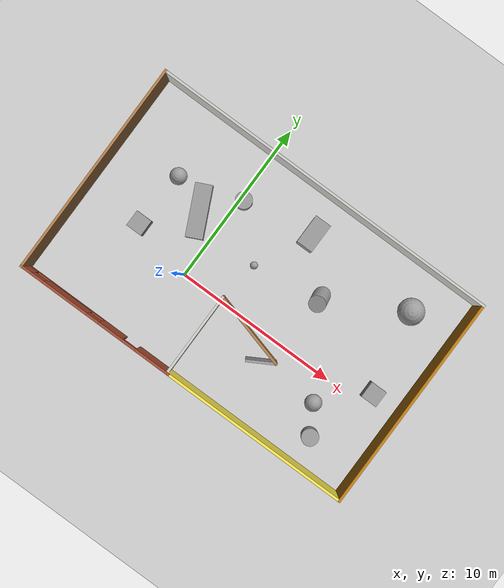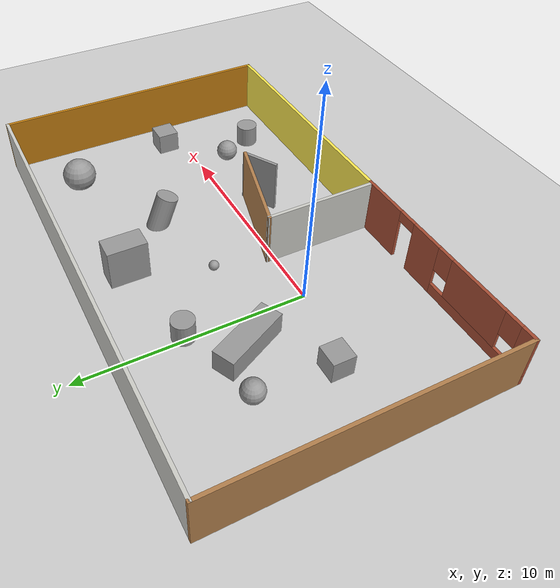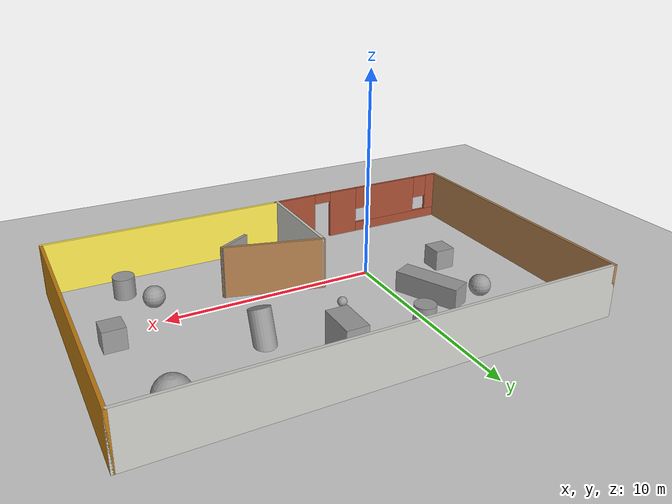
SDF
<sdf version="1.7">
 <world name="default">
  <light name="sun" type="directional">
   <pose>0 0 10 0 -0 0</pose>
   <diffuse>0.8 0.8 0.8 1</diffuse>
   <specular>0.2 0.2 0.2 1</specular>
   <attenuation>
    <range>1000</range>
    <constant>0.9</constant>
    <linear>0.01</linear>
    <quadratic>0.001</quadratic>
   </attenuation>
   <direction>-0.5 0.1 -0.9</direction>
   <spot><inner_angle>0</inner_angle><outer_angle>0</outer_angle><falloff>0</falloff></spot>
  </light>
  <model name="ground_plane">
   <static>1</static>
   <link name="link">
    <collision name="collision">
     <geometry><plane><normal>0 0 1</normal><size>100 100</size></plane></geometry>
     <surface>
      <contact><collide_bitmask>65535</collide_bitmask></contact>
      <friction><ode><mu>100</mu><mu2>50</mu2></ode></friction>
     </surface>
    </collision>
    <visual name="visual">
     <cast_shadows>0</cast_shadows>
     <geometry><plane><normal>0 0 1</normal><size>100 100</size></plane></geometry>
     <material>
      <script><uri>file://media/materials/scripts/gazebo.material</uri><name>Gazebo/Grey</name></script>
     </material>
    </visual>
   </link>
  </model>
  <gravity>0 0 -9.8</gravity>
  <magnetic_field>6e-06 2.3e-05 -4.2e-05</magnetic_field>
  <atmosphere type="adiabatic"/>
  <physics type="ode">
   <max_step_size>0.001</max_step_size>
   <real_time_factor>1</real_time_factor>
   <real_time_update_rate>1000</real_time_update_rate>
  </physics>
  <scene><ambient>0.4 0.4 0.4 1</ambient><background>0.7 0.7 0.7 1</background><shadows>1</shadows></scene>
  <spherical_coordinates>
   <surface_model>EARTH_WGS84</surface_model>
   <latitude_deg>0</latitude_deg>
   <longitude_deg>0</longitude_deg>
   <elevation>0</elevation>
   <heading_deg>0</heading_deg>
  </spherical_coordinates>
  <model name="best_world3">
   <pose>3.445 1.78 0 0 -0 0</pose>
   <link name="Wall_0">
    <pose>-5.75 -6.55 0 0 -0 3.14159</pose>
    <visual name="Wall_0_Visual_0">
     <pose>-3.85348 0 1.25 0 -0 0</pose>
     <geometry><box><size>2.29304 0.15 2.5</size></box></geometry>
     <material>
      <script><uri>file://media/materials/scripts/gazebo.material</uri><name>Gazebo/Bricks</name></script>
      <ambient>1 1 1 1</ambient>
     </material>
     <meta><layer>0</layer></meta>
    </visual>
    <collision name="Wall_0_Collision_0">
     <geometry><box><size>2.29304 0.15 2.5</size></box></geometry>
     <pose>-3.85348 0 1.25 0 -0 0</pose>
    </collision>
    <visual name="Wall_0_Visual_1">
     <pose>-1.02234 0 1.25 0 -0 0</pose>
     <geometry><box><size>1.56924 0.15 2.5</size></box></geometry>
     <material>
      <script><uri>file://media/materials/scripts/gazebo.material</uri><name>Gazebo/Bricks</name></script>
      <ambient>1 1 1 1</ambient>
     </material>
     <meta><layer>0</layer></meta>
    </visual>
    <collision name="Wall_0_Collision_1">
     <geometry><box><size>1.56924 0.15 2.5</size></box></geometry>
     <pose>-1.02234 0 1.25 0 -0 0</pose>
    </collision>
    <visual name="Wall_0_Visual_2">
     <pose>2.38114 0 0.25 0 -0 0</pose>
     <geometry><box><size>5.23772 0.15 0.5</size></box></geometry>
     <material>
      <script><uri>file://media/materials/scripts/gazebo.material</uri><name>Gazebo/Bricks</name></script>
      <ambient>1 1 1 1</ambient>
     </material>
     <meta><layer>0</layer></meta>
    </visual>
    <collision name="Wall_0_Collision_2">
     <geometry><box><size>5.23772 0.15 0.5</size></box></geometry>
     <pose>2.38114 0 0.25 0 -0 0</pose>
    </collision>
    <visual name="Wall_0_Visual_3">
     <pose>2.02324 0 1.5 0 -0 0</pose>
     <geometry><box><size>2.92191 0.15 2</size></box></geometry>
     <material>
      <script><uri>file://media/materials/scripts/gazebo.material</uri><name>Gazebo/Bricks</name></script>
      <ambient>1 1 1 1</ambient>
     </material>
     <meta><layer>0</layer></meta>
    </visual>
    <collision name="Wall_0_Collision_3">
     <geometry><box><size>2.92191 0.15 2</size></box></geometry>
     <pose>2.02324 0 1.5 0 -0 0</pose>
    </collision>
    <visual name="Wall_0_Visual_4">
     <pose>4.6421 0 1.5 0 -0 0</pose>
     <geometry><box><size>0.715807 0.15 2</size></box></geometry>
     <material>
      <script><uri>file://media/materials/scripts/gazebo.material</uri><name>Gazebo/Bricks</name></script>
      <ambient>1 1 1 1</ambient>
     </material>
     <meta><layer>0</layer></meta>
    </visual>
    <collision name="Wall_0_Collision_4">
     <geometry><box><size>0.715807 0.15 2</size></box></geometry>
     <pose>4.6421 0 1.5 0 -0 0</pose>
    </collision>
    <visual name="Wall_0_Visual_5">
     <pose>0.16228 0 1.9 0 -0 0</pose>
     <geometry><box><size>0.8 0.15 1.2</size></box></geometry>
     <material>
      <script><uri>file://media/materials/scripts/gazebo.material</uri><name>Gazebo/Bricks</name></script>
      <ambient>1 1 1 1</ambient>
     </material>
     <meta><layer>0</layer></meta>
    </visual>
    <collision name="Wall_0_Collision_5">
     <geometry><box><size>0.8 0.15 1.2</size></box></geometry>
     <pose>0.16228 0 1.9 0 -0 0</pose>
    </collision>
    <visual name="Wall_0_Visual_6">
     <pose>3.88419 0 1.9 0 -0 0</pose>
     <geometry><box><size>0.8 0.15 1.2</size></box></geometry>
     <material>
      <script><uri>file://media/materials/scripts/gazebo.material</uri><name>Gazebo/Bricks</name></script>
      <ambient>1 1 1 1</ambient>
     </material>
     <meta><layer>0</layer></meta>
    </visual>
    <collision name="Wall_0_Collision_6">
     <geometry><box><size>0.8 0.15 1.2</size></box></geometry>
     <pose>3.88419 0 1.9 0 -0 0</pose>
    </collision>
    <visual name="Wall_0_Visual_7">
     <pose>-2.25696 0 2.25 0 -0 0</pose>
     <geometry><box><size>0.9 0.15 0.5</size></box></geometry>
     <material>
      <script><uri>file://media/materials/scripts/gazebo.material</uri><name>Gazebo/Bricks</name></script>
      <ambient>1 1 1 1</ambient>
     </material>
     <meta><layer>0</layer></meta>
    </visual>
    <collision name="Wall_0_Collision_7">
     <geometry><box><size>0.9 0.15 0.5</size></box></geometry>
     <pose>-2.25696 0 2.25 0 -0 0</pose>
    </collision>
   </link>
   <link name="Wall_1">
    <collision name="Wall_1_Collision">
     <geometry><box><size>13.25 0.15 2.5</size></box></geometry>
     <pose>0 0 1.25 0 -0 0</pose>
    </collision>
    <visual name="Wall_1_Visual">
     <pose>0 0 1.25 0 -0 0</pose>
     <geometry><box><size>13.25 0.15 2.5</size></box></geometry>
     <material>
      <script><uri>file://media/materials/scripts/gazebo.material</uri><name>Gazebo/Wood</name></script>
      <ambient>1 1 1 1</ambient>
     </material>
     <meta><layer>0</layer></meta>
    </visual>
    <pose>-10.675 0 0 0 -0 1.5708</pose>
   </link>
   <link name="Wall_2">
    <collision name="Wall_2_Collision">
     <geometry><box><size>21.5 0.15 2.5</size></box></geometry>
     <pose>0 0 1.25 0 -0 0</pose>
    </collision>
    <visual name="Wall_2_Visual">
     <pose>0 0 1.25 0 -0 0</pose>
     <geometry><box><size>21.5 0.15 2.5</size></box></geometry>
     <material>
      <script><uri>file://media/materials/scripts/gazebo.material</uri><name>Gazebo/CeilingTiled</name></script>
      <ambient>0.435294 0.796078 0.67451 1</ambient>
     </material>
     <meta><layer>0</layer></meta>
    </visual>
    <pose>0 6.55 0 0 -0 0</pose>
   </link>
   <link name="Wall_3">
    <collision name="Wall_3_Collision">
     <geometry><box><size>13.25 0.15 2.5</size></box></geometry>
     <pose>0 0 1.25 0 -0 0</pose>
    </collision>
    <visual name="Wall_3_Visual">
     <pose>0 0 1.25 0 -0 0</pose>
     <geometry><box><size>13.25 0.15 2.5</size></box></geometry>
     <material>
      <script><uri>file://media/materials/scripts/gazebo.material</uri><name>Gazebo/Grey</name></script>
      <ambient>0.756863 0.490196 0.0666667 1</ambient>
     </material>
     <meta><layer>0</layer></meta>
    </visual>
    <pose>10.675 0 0 0 -0 -1.5708</pose>
   </link>
   <link name="Wall_4">
    <collision name="Wall_4_Collision">
     <geometry><box><size>11.75 0.15 2.5</size></box></geometry>
     <pose>0 0 1.25 0 -0 0</pose>
    </collision>
    <visual name="Wall_4_Visual">
     <pose>0 0 1.25 0 -0 0</pose>
     <geometry><box><size>11.75 0.15 2.5</size></box></geometry>
     <material>
      <script><uri>file://media/materials/scripts/gazebo.material</uri><name>Gazebo/Grey</name></script>
      <ambient>0.988235 0.913725 0.309804 1</ambient>
     </material>
     <meta><layer>0</layer></meta>
    </visual>
    <pose>4.875 -6.55 0 0 -0 3.14159</pose>
   </link>
   <link name="Wall_5">
    <collision name="Wall_5_Collision">
     <geometry><box><size>5.25 0.15 2.5</size></box></geometry>
     <pose>0 0 1.25 0 -0 0</pose>
    </collision>
    <visual name="Wall_5_Visual">
     <pose>0 0 1.25 0 -0 0</pose>
     <geometry><box><size>5.25 0.15 2.5</size></box></geometry>
     <material>
      <script><uri>file://media/materials/scripts/gazebo.material</uri><name>Gazebo/CeilingTiled</name></script>
      <ambient>0.921569 0.807843 0.615686 1</ambient>
     </material>
     <meta><layer>0</layer></meta>
    </visual>
    <pose>-0.925 -4 0 0 -0 1.5708</pose>
   </link>
   <link name="Wall_6">
    <collision name="Wall_6_Collision">
     <geometry><box><size>4.75 0.15 2.5</size></box></geometry>
     <pose>0 0 1.25 0 -0 0</pose>
    </collision>
    <visual name="Wall_6_Visual">
     <pose>0 0 1.25 0 -0 0</pose>
     <geometry><box><size>4.75 0.15 2.5</size></box></geometry>
     <material>
      <script><uri>file://media/materials/scripts/gazebo.material</uri><name>Gazebo/Wood</name></script>
      <ambient>1 1 1 1</ambient>
     </material>
     <meta><layer>0</layer></meta>
    </visual>
    <pose>1.29663 -2.04528 0 0 -0 -0.261799</pose>
   </link>
   <link name="Wall_7">
    <collision name="Wall_7_Collision">
     <geometry><box><size>1.75 0.15 2.5</size></box></geometry>
     <pose>0 0 1.25 0 -0 0</pose>
    </collision>
    <visual name="Wall_7_Visual">
     <pose>0 0 1.25 0 -0 0</pose>
     <geometry><box><size>1.75 0.15 2.5</size></box></geometry>
     <material>
      <script><uri>file://media/materials/scripts/gazebo.material</uri><name>Gazebo/Grey</name></script>
      <ambient>1 1 1 1</ambient>
     </material>
     <meta><layer>0</layer></meta>
    </visual>
    <pose>2.82544 -3.04057 0 0 -0 -2.61799</pose>
   </link>
   <static>1</static>
  </model>
  <model name="unit_box">
   <pose>12.4255 0.940738 0.5 0 -0 0</pose>
   <link name="link">
    <inertial>
     <mass>1</mass>
     <inertia>
      <ixx>0.166667</ixx>
      <ixy>0</ixy>
      <ixz>0</ixz>
      <iyy>0.166667</iyy>
      <iyz>0</iyz>
      <izz>0.166667</izz>
     </inertia>
    </inertial>
    <collision name="collision"><geometry><box><size>1 1 1</size></box></geometry></collision>
    <visual name="visual">
     <geometry><box><size>1 1 1</size></box></geometry>
     <material>
      <script><name>Gazebo/Grey</name><uri>file://media/materials/scripts/gazebo.material</uri></script>
     </material>
    </visual>
   </link>
  </model>
  <model name="unit_cylinder">
   <pose>10.9922 -3.07184 0.5 0 -0 0</pose>
   <link name="link">
    <inertial>
     <mass>1</mass>
     <inertia><ixx>0.145833</ixx><ixy>0</ixy><ixz>0</ixz><iyy>0.145833</iyy><iyz>0</iyz><izz>0.125</izz></inertia>
    </inertial>
    <collision name="collision">
     <geometry><cylinder><radius>0.5</radius><length>1</length></cylinder></geometry>
    </collision>
    <visual name="visual">
     <geometry><cylinder><radius>0.5</radius><length>1</length></cylinder></geometry>
     <material>
      <script><name>Gazebo/Grey</name><uri>file://media/materials/scripts/gazebo.material</uri></script>
     </material>
    </visual>
   </link>
  </model>
  <model name="unit_sphere">
   <pose>10.046 -1.4558 0.5 0 -0 0</pose>
   <link name="link">
    <inertial>
     <mass>1</mass>
     <inertia><ixx>0.1</ixx><ixy>0</ixy><ixz>0</ixz><iyy>0.1</iyy><iyz>0</iyz><izz>0.1</izz></inertia>
    </inertial>
    <collision name="collision"><geometry><sphere><radius>0.5</radius></sphere></geometry></collision>
    <visual name="visual">
     <geometry><sphere><radius>0.5</radius></sphere></geometry>
     <material>
      <script><name>Gazebo/Grey</name><uri>file://media/materials/scripts/gazebo.material</uri></script>
     </material>
    </visual>
   </link>
  </model>
  <model name="unit_cylinder_0">
   <pose>6.89593 3.44813 0.5 0.369592 -0 0</pose>
   <link name="link">
    <inertial>
     <mass>1</mass>
     <inertia><ixx>0.145833</ixx><ixy>0</ixy><ixz>0</ixz><iyy>0.145833</iyy><iyz>0</iyz><izz>0.125</izz></inertia>
    </inertial>
    <collision name="collision">
     <geometry><cylinder><radius>0.5</radius><length>1.99547</length></cylinder></geometry>
    </collision>
    <visual name="visual">
     <geometry><cylinder><radius>0.5</radius><length>1.99547</length></cylinder></geometry>
     <material>
      <script><name>Gazebo/Grey</name><uri>file://media/materials/scripts/gazebo.material</uri></script>
     </material>
    </visual>
   </link>
  </model>
  <model name="unit_box_0">
   <pose>-3.67847 0.843791 0.5 0 -0 0</pose>
   <link name="link">
    <inertial>
     <mass>1</mass>
     <inertia>
      <ixx>0.166667</ixx>
      <ixy>0</ixy>
      <ixz>0</ixz>
      <iyy>0.166667</iyy>
      <iyz>0</iyz>
      <izz>0.166667</izz>
     </inertia>
    </inertial>
    <collision name="collision"><geometry><box><size>1 1 1</size></box></geometry></collision>
    <visual name="visual">
     <geometry><box><size>1 1 1</size></box></geometry>
     <material>
      <script><name>Gazebo/Grey</name><uri>file://media/materials/scripts/gazebo.material</uri></script>
     </material>
    </visual>
   </link>
  </model>
  <model name="unit_sphere_0">
   <pose>-3.51656 4.25212 0.5 0 -0 0</pose>
   <link name="link">
    <inertial>
     <mass>1</mass>
     <inertia><ixx>0.1</ixx><ixy>0</ixy><ixz>0</ixz><iyy>0.1</iyy><iyz>0</iyz><izz>0.1</izz></inertia>
    </inertial>
    <collision name="collision"><geometry><sphere><radius>0.5</radius></sphere></geometry></collision>
    <visual name="visual">
     <geometry><sphere><radius>0.5</radius></sphere></geometry>
     <material>
      <script><name>Gazebo/Grey</name><uri>file://media/materials/scripts/gazebo.material</uri></script>
     </material>
    </visual>
   </link>
  </model>
  <model name="unit_cylinder_1">
   <pose>0.240611 5.30755 0.5 0 -0 0</pose>
   <link name="link">
    <inertial>
     <mass>1</mass>
     <inertia><ixx>0.145833</ixx><ixy>0</ixy><ixz>0</ixz><iyy>0.145833</iyy><iyz>0</iyz><izz>0.125</izz></inertia>
    </inertial>
    <collision name="collision">
     <geometry><cylinder><radius>0.5</radius><length>1</length></cylinder></geometry>
    </collision>
    <visual name="visual">
     <geometry><cylinder><radius>0.5</radius><length>1</length></cylinder></geometry>
     <material>
      <script><name>Gazebo/Grey</name><uri>file://media/materials/scripts/gazebo.material</uri></script>
     </material>
    </visual>
   </link>
  </model>
  <model name="unit_sphere_1">
   <pose>11.4193 5.88021 0.5 0 -0 0</pose>
   <link name="link">
    <inertial>
     <mass>1</mass>
     <inertia><ixx>0.1</ixx><ixy>0</ixy><ixz>0</ixz><iyy>0.1</iyy><iyz>0</iyz><izz>0.1</izz></inertia>
    </inertial>
    <collision name="collision"><geometry><sphere><radius>0.78472</radius></sphere></geometry></collision>
    <visual name="visual">
     <geometry><sphere><radius>0.78472</radius></sphere></geometry>
     <material>
      <script><name>Gazebo/Grey</name><uri>file://media/materials/scripts/gazebo.material</uri></script>
     </material>
    </visual>
   </link>
  </model>
  <model name="unit_box_1">
   <pose>4.45249 6.05875 0.5 0 -0 0</pose>
   <link name="link">
    <inertial>
     <mass>1</mass>
     <inertia>
      <ixx>0.166667</ixx>
      <ixy>0</ixy>
      <ixz>0</ixz>
      <iyy>0.166667</iyy>
      <iyz>0</iyz>
      <izz>0.166667</izz>
     </inertia>
    </inertial>
    <collision name="collision"><geometry><box><size>1 1.75876 2.71028</size></box></geometry></collision>
    <visual name="visual">
     <geometry><box><size>1 1.75876 2.71028</size></box></geometry>
     <material>
      <script><name>Gazebo/Grey</name><uri>file://media/materials/scripts/gazebo.material</uri></script>
     </material>
    </visual>
   </link>
  </model>
  <model name="unit_sphere_2">
   <pose>2.82807 2.74753 0.5 0 -0 0</pose>
   <link name="link">
    <inertial>
     <mass>1</mass>
     <inertia><ixx>0.1</ixx><ixy>0</ixy><ixz>0</ixz><iyy>0.1</iyy><iyz>0</iyz><izz>0.1</izz></inertia>
    </inertial>
    <collision name="collision"><geometry><sphere><radius>0.22316</radius></sphere></geometry></collision>
    <visual name="visual">
     <geometry><sphere><radius>0.22316</radius></sphere></geometry>
     <material>
      <script><name>Gazebo/Grey</name><uri>file://media/materials/scripts/gazebo.material</uri></script>
     </material>
    </visual>
   </link>
  </model>
  <model name="unit_box_2">
   <pose>-1.41098 3.35772 0.5 0 -0 0.445922</pose>
   <link name="link">
    <inertial>
     <mass>1</mass>
     <inertia>
      <ixx>0.166667</ixx>
      <ixy>0</ixy>
      <ixz>0</ixz>
      <iyy>0.166667</iyy>
      <iyz>0</iyz>
      <izz>0.166667</izz>
     </inertia>
    </inertial>
    <collision name="collision"><geometry><box><size>1 3.0726 1</size></box></geometry></collision>
    <visual name="visual">
     <geometry><box><size>1 3.0726 1</size></box></geometry>
     <material>
      <script><name>Gazebo/Grey</name><uri>file://media/materials/scripts/gazebo.material</uri></script>
     </material>
    </visual>
   </link>
  </model>
 </world>
</sdf>
